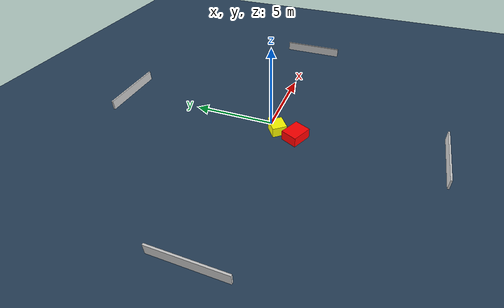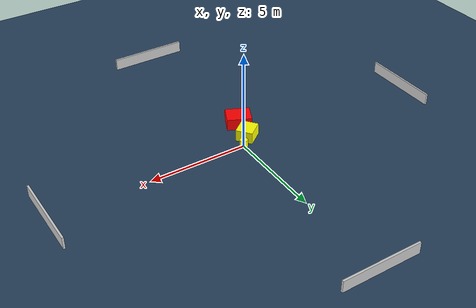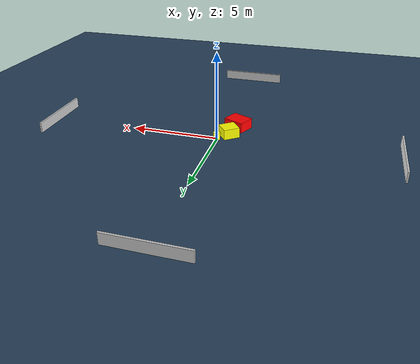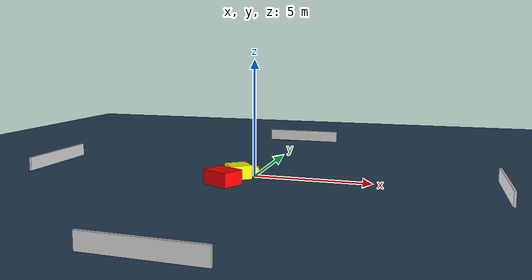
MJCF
<?xml version="1.0" ?>
<mujoco model="generated_environment">
  <option timestep="0.01" integrator="RK4" cone="elliptic"/>
  <default>
    <geom density="1"/>
  </default>
  <asset>
    <texture builtin="gradient" height="3072" name="skybox" rgb1="0.3 0.5 0.7" rgb2="0 0 0" type="skybox" width="512"/>
    <texture builtin="checker" height="300" name="groundplane" rgb1="0.2 0.3 0.4" rgb2="0.1 0.2 0.3" type="2d" width="300"/>
    <material name="groundplane" reflectance="0.2" texrepeat="5 5" texture="groundplane"/>
  </asset>
  <worldbody>
    <light dir="0 0 -1" directional="true" pos="0 0 1.5"/>
    <geom condim="3" friction="0.5 0.005 0.001" material="groundplane" name="floor" pos="0 0 0" size="0 0 0.05" type="plane"/>
    <body name="walls">
      <geom name="wall_1" condim="4" pos="-10.0 0.0 0.3" rgba="0.800000011920929 0.800000011920929 0.800000011920929 1.0" size="0.05 2.0 0.3" type="box"/>
      <geom name="wall_2" condim="4" pos="10.0 0.0 0.3" rgba="0.800000011920929 0.800000011920929 0.800000011920929 1.0" size="0.05 2.0 0.3" type="box"/>
      <geom name="wall_3" condim="4" pos="0.0 -10.0 0.3" rgba="0.800000011920929 0.800000011920929 0.800000011920929 1.0" size="2.0 0.05 0.3" type="box"/>
      <geom name="wall_4" condim="4" pos="0.0 10.0 0.3" rgba="0.800000011920929 0.800000011920929 0.800000011920929 1.0" size="2.0 0.05 0.3" type="box"/>
    </body>
    <body name="robot">
      <joint name="joint_x" type="slide" pos="0 0 0" axis="1 0 0"/>
      <joint name="joint_y" type="slide" pos="0 0 0" axis="0 1 0"/>
      <geom name="robot" type="cylinder" pos="0.0 0.0 0.2" size="0.2 0.2 0.0" mass="5.0" friction="1.0 0.005 0.0001" condim="4" rgba="1.0 1.0 0.0 1.0"/>
    </body>
    <body name="obstacle_1_movable">
      <geom name="obstacle_1_movable" condim="4" pos="-0.558090224608353 -0.5680298579123765 0.3" euler="0 0 127.78560983448928" friction="0.0 0.005 0.001" rgba="1.0 1.0 0.0 1.0" size="0.429308841659711 0.4715984469123876 0.3" type="box" mass="0.1"/>
      <joint type="free"/>
    </body>
    <body name="obstacle_2_static">
      <geom name="obstacle_2_static" condim="4" pos="-0.8139545107720195 -1.7655434285060954 0.3" euler="0 0 65.10356846471295" friction="0.0 0.005 0.001" rgba="1.0 0.0 0.0 1.0" size="0.49945781912678816 0.6209755918011797 0.3" type="box"/>
    </body>
  </worldbody>
  <actuator>
    <motor name="actuator_x" joint="joint_x" gear="1" ctrlrange="-1 1"/>
    <motor name="actuator_y" joint="joint_y" gear="1" ctrlrange="-1 1"/>
  </actuator>
</mujoco>
